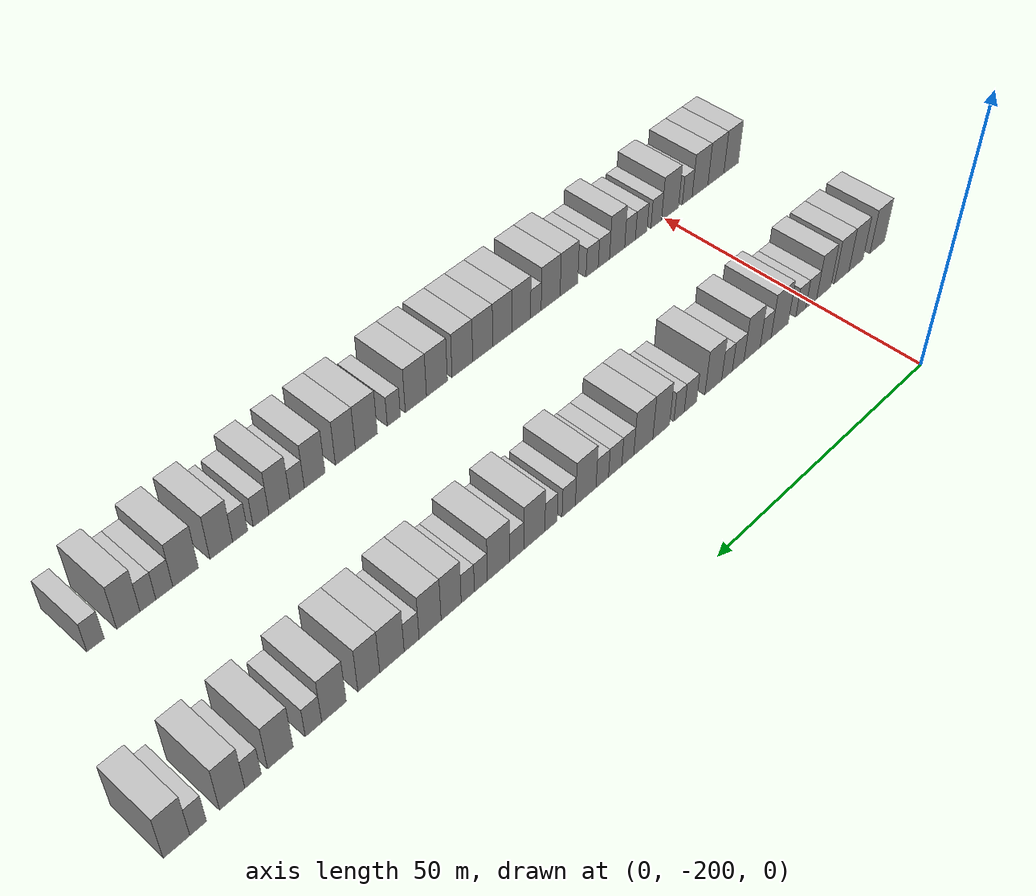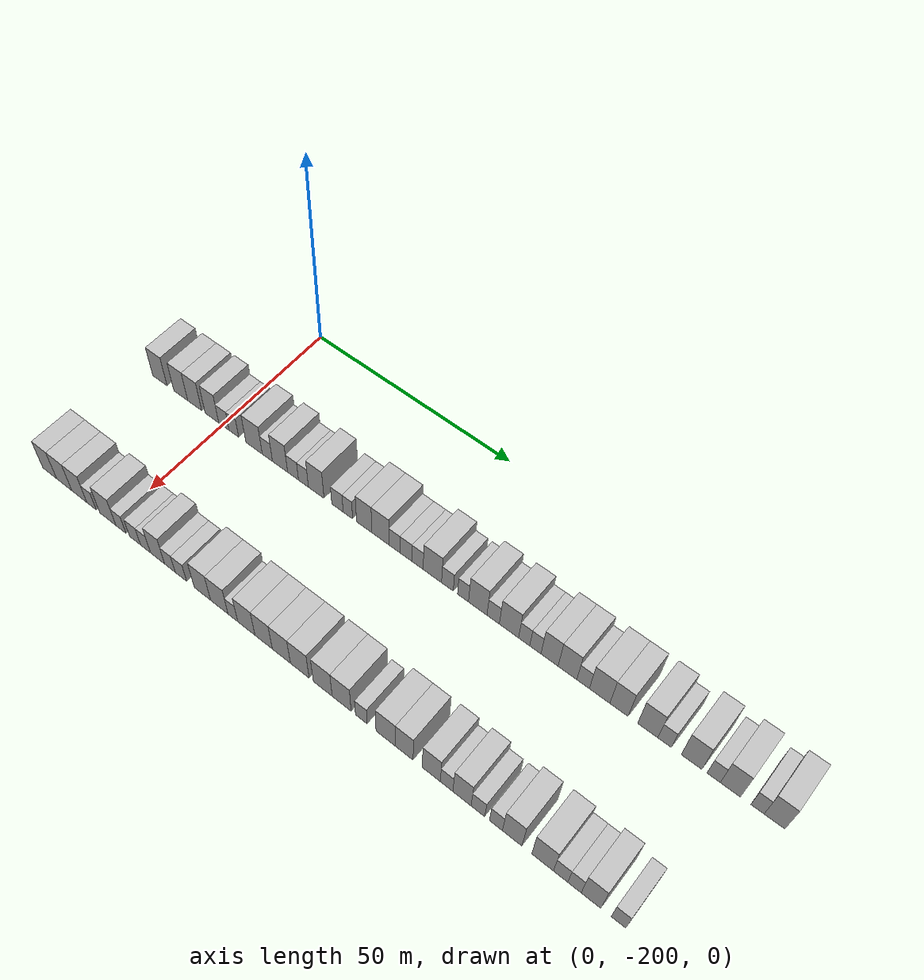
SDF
<sdf version="1.6">
 <world name="default">
  <model name="building_1">
   <static>1</static>
   <pose>25.0000 -217.9095 0 0.000000 0.000000 0.000000</pose>
   <link name="link">
    <pose>0 0 4.50 0 0 0</pose>
    <collision name="collision"><geometry><box><size>10.0000 4.1810 9.0000</size></box></geometry></collision>
    <visual name="visual">
     <cast_shadows>0</cast_shadows>
     <geometry><box><size>10.0000 4.1810 9.0000</size></box></geometry>
     <material>
      <script>
       <uri>model://HANNAS_wall/materials/scripts</uri>
       <uri>model://HANNAS_wall/materials/textures</uri>
       <name>vrc/HANNAS_wall</name>
      </script>
     </material>
    </visual>
   </link>
  </model>
  <model name="building_2">
   <static>1</static>
   <pose>25.0000 -211.8305 0 0.000000 0.000000 0.000000</pose>
   <link name="link">
    <pose>0 0 4.50 0 0 0</pose>
    <collision name="collision"><geometry><box><size>10.0000 3.9770 9.0000</size></box></geometry></collision>
    <visual name="visual">
     <cast_shadows>0</cast_shadows>
     <geometry><box><size>10.0000 3.9770 9.0000</size></box></geometry>
     <material>
      <script>
       <uri>model://HANNAS_wall/materials/scripts</uri>
       <uri>model://HANNAS_wall/materials/textures</uri>
       <name>vrc/HANNAS_wall</name>
      </script>
     </material>
    </visual>
   </link>
  </model>
  <model name="building_3">
   <static>1</static>
   <pose>25.0000 -207.8415 0 0.000000 0.000000 0.000000</pose>
   <link name="link">
    <pose>0 0 4.50 0 0 0</pose>
    <collision name="collision"><geometry><box><size>10.0000 4.0009 9.0000</size></box></geometry></collision>
    <visual name="visual">
     <cast_shadows>0</cast_shadows>
     <geometry><box><size>10.0000 4.0009 9.0000</size></box></geometry>
     <material>
      <script>
       <uri>model://HANNAS_wall/materials/scripts</uri>
       <uri>model://HANNAS_wall/materials/textures</uri>
       <name>vrc/HANNAS_wall</name>
      </script>
     </material>
    </visual>
   </link>
  </model>
  <model name="building_4">
   <static>1</static>
   <pose>25.0000 -202.9239 0 0.000000 0.000000 0.000000</pose>
   <link name="link">
    <pose>0 0 4.50 0 0 0</pose>
    <collision name="collision"><geometry><box><size>10.0000 3.8345 9.0000</size></box></geometry></collision>
    <visual name="visual">
     <cast_shadows>0</cast_shadows>
     <geometry><box><size>10.0000 3.8345 9.0000</size></box></geometry>
     <material>
      <script>
       <uri>model://HANNAS_wall/materials/scripts</uri>
       <uri>model://HANNAS_wall/materials/textures</uri>
       <name>vrc/HANNAS_wall</name>
      </script>
     </material>
    </visual>
   </link>
  </model>
  <model name="building_5">
   <static>1</static>
   <pose>25.0000 -199.5439 0 0.000000 0.000000 0.000000</pose>
   <link name="link">
    <pose>0 0 3.00 0 0 0</pose>
    <collision name="collision"><geometry><box><size>10.0000 2.9255 6.0000</size></box></geometry></collision>
    <visual name="visual">
     <cast_shadows>0</cast_shadows>
     <geometry><box><size>10.0000 2.9255 6.0000</size></box></geometry>
     <material>
      <script>
       <uri>model://HANNAS_wall/materials/scripts</uri>
       <uri>model://HANNAS_wall/materials/textures</uri>
       <name>vrc/HANNAS_wall</name>
      </script>
     </material>
    </visual>
   </link>
  </model>
  <model name="building_6">
   <static>1</static>
   <pose>25.0000 -196.7667 0 0.000000 0.000000 0.000000</pose>
   <link name="link">
    <pose>0 0 3.00 0 0 0</pose>
    <collision name="collision"><geometry><box><size>10.0000 2.6289 6.0000</size></box></geometry></collision>
    <visual name="visual">
     <cast_shadows>0</cast_shadows>
     <geometry><box><size>10.0000 2.6289 6.0000</size></box></geometry>
     <material>
      <script>
       <uri>model://HANNAS_wall/materials/scripts</uri>
       <uri>model://HANNAS_wall/materials/textures</uri>
       <name>vrc/HANNAS_wall</name>
      </script>
     </material>
    </visual>
   </link>
  </model>
  <model name="building_7">
   <static>1</static>
   <pose>25.0000 -191.2194 0 0.000000 0.000000 0.000000</pose>
   <link name="link">
    <pose>0 0 4.50 0 0 0</pose>
    <collision name="collision"><geometry><box><size>10.0000 4.4657 9.0000</size></box></geometry></collision>
    <visual name="visual">
     <cast_shadows>0</cast_shadows>
     <geometry><box><size>10.0000 4.4657 9.0000</size></box></geometry>
     <material>
      <script>
       <uri>model://HANNAS_wall/materials/scripts</uri>
       <uri>model://HANNAS_wall/materials/textures</uri>
       <name>vrc/HANNAS_wall</name>
      </script>
     </material>
    </visual>
   </link>
  </model>
  <model name="building_8">
   <static>1</static>
   <pose>25.0000 -187.6018 0 0.000000 0.000000 0.000000</pose>
   <link name="link">
    <pose>0 0 3.00 0 0 0</pose>
    <collision name="collision"><geometry><box><size>10.0000 2.7696 6.0000</size></box></geometry></collision>
    <visual name="visual">
     <cast_shadows>0</cast_shadows>
     <geometry><box><size>10.0000 2.7696 6.0000</size></box></geometry>
     <material>
      <script>
       <uri>model://HANNAS_wall/materials/scripts</uri>
       <uri>model://HANNAS_wall/materials/textures</uri>
       <name>vrc/HANNAS_wall</name>
      </script>
     </material>
    </visual>
   </link>
  </model>
  <model name="building_9">
   <static>1</static>
   <pose>25.0000 -184.1889 0 0.000000 0.000000 0.000000</pose>
   <link name="link">
    <pose>0 0 4.50 0 0 0</pose>
    <collision name="collision"><geometry><box><size>10.0000 4.0561 9.0000</size></box></geometry></collision>
    <visual name="visual">
     <cast_shadows>0</cast_shadows>
     <geometry><box><size>10.0000 4.0561 9.0000</size></box></geometry>
     <material>
      <script>
       <uri>model://HANNAS_wall/materials/scripts</uri>
       <uri>model://HANNAS_wall/materials/textures</uri>
       <name>vrc/HANNAS_wall</name>
      </script>
     </material>
    </visual>
   </link>
  </model>
  <model name="building_10">
   <static>1</static>
   <pose>25.0000 -180.7169 0 0.000000 0.000000 0.000000</pose>
   <link name="link">
    <pose>0 0 3.00 0 0 0</pose>
    <collision name="collision"><geometry><box><size>10.0000 2.8880 6.0000</size></box></geometry></collision>
    <visual name="visual">
     <cast_shadows>0</cast_shadows>
     <geometry><box><size>10.0000 2.8880 6.0000</size></box></geometry>
     <material>
      <script>
       <uri>model://HANNAS_wall/materials/scripts</uri>
       <uri>model://HANNAS_wall/materials/textures</uri>
       <name>vrc/HANNAS_wall</name>
      </script>
     </material>
    </visual>
   </link>
  </model>
  <model name="building_11">
   <static>1</static>
   <pose>25.0000 -177.9663 0 0.000000 0.000000 0.000000</pose>
   <link name="link">
    <pose>0 0 3.00 0 0 0</pose>
    <collision name="collision"><geometry><box><size>10.0000 2.6132 6.0000</size></box></geometry></collision>
    <visual name="visual">
     <cast_shadows>0</cast_shadows>
     <geometry><box><size>10.0000 2.6132 6.0000</size></box></geometry>
     <material>
      <script>
       <uri>model://HANNAS_wall/materials/scripts</uri>
       <uri>model://HANNAS_wall/materials/textures</uri>
       <name>vrc/HANNAS_wall</name>
      </script>
     </material>
    </visual>
   </link>
  </model>
  <model name="building_12">
   <static>1</static>
   <pose>25.0000 -174.6368 0 0.000000 0.000000 0.000000</pose>
   <link name="link">
    <pose>0 0 4.50 0 0 0</pose>
    <collision name="collision"><geometry><box><size>10.0000 4.0458 9.0000</size></box></geometry></collision>
    <visual name="visual">
     <cast_shadows>0</cast_shadows>
     <geometry><box><size>10.0000 4.0458 9.0000</size></box></geometry>
     <material>
      <script>
       <uri>model://HANNAS_wall/materials/scripts</uri>
       <uri>model://HANNAS_wall/materials/textures</uri>
       <name>vrc/HANNAS_wall</name>
      </script>
     </material>
    </visual>
   </link>
  </model>
  <model name="building_13">
   <static>1</static>
   <pose>25.0000 -169.1580 0 0.000000 0.000000 0.000000</pose>
   <link name="link">
    <pose>0 0 3.00 0 0 0</pose>
    <collision name="collision"><geometry><box><size>10.0000 2.9118 6.0000</size></box></geometry></collision>
    <visual name="visual">
     <cast_shadows>0</cast_shadows>
     <geometry><box><size>10.0000 2.9118 6.0000</size></box></geometry>
     <material>
      <script>
       <uri>model://HANNAS_wall/materials/scripts</uri>
       <uri>model://HANNAS_wall/materials/textures</uri>
       <name>vrc/HANNAS_wall</name>
      </script>
     </material>
    </visual>
   </link>
  </model>
  <model name="building_14">
   <static>1</static>
   <pose>25.0000 -166.4994 0 0.000000 0.000000 0.000000</pose>
   <link name="link">
    <pose>0 0 3.00 0 0 0</pose>
    <collision name="collision"><geometry><box><size>10.0000 2.4055 6.0000</size></box></geometry></collision>
    <visual name="visual">
     <cast_shadows>0</cast_shadows>
     <geometry><box><size>10.0000 2.4055 6.0000</size></box></geometry>
     <material>
      <script>
       <uri>model://HANNAS_wall/materials/scripts</uri>
       <uri>model://HANNAS_wall/materials/textures</uri>
       <name>vrc/HANNAS_wall</name>
      </script>
     </material>
    </visual>
   </link>
  </model>
  <model name="building_15">
   <static>1</static>
   <pose>25.0000 -162.3699 0 0.000000 0.000000 0.000000</pose>
   <link name="link">
    <pose>0 0 4.50 0 0 0</pose>
    <collision name="collision"><geometry><box><size>10.0000 3.8535 9.0000</size></box></geometry></collision>
    <visual name="visual">
     <cast_shadows>0</cast_shadows>
     <geometry><box><size>10.0000 3.8535 9.0000</size></box></geometry>
     <material>
      <script>
       <uri>model://HANNAS_wall/materials/scripts</uri>
       <uri>model://HANNAS_wall/materials/textures</uri>
       <name>vrc/HANNAS_wall</name>
      </script>
     </material>
    </visual>
   </link>
  </model>
  <model name="building_16">
   <static>1</static>
   <pose>25.0000 -158.2993 0 0.000000 0.000000 0.000000</pose>
   <link name="link">
    <pose>0 0 4.50 0 0 0</pose>
    <collision name="collision"><geometry><box><size>10.0000 4.2877 9.0000</size></box></geometry></collision>
    <visual name="visual">
     <cast_shadows>0</cast_shadows>
     <geometry><box><size>10.0000 4.2877 9.0000</size></box></geometry>
     <material>
      <script>
       <uri>model://HANNAS_wall/materials/scripts</uri>
       <uri>model://HANNAS_wall/materials/textures</uri>
       <name>vrc/HANNAS_wall</name>
      </script>
     </material>
    </visual>
   </link>
  </model>
  <model name="building_17">
   <static>1</static>
   <pose>25.0000 -154.8249 0 0.000000 0.000000 0.000000</pose>
   <link name="link">
    <pose>0 0 3.00 0 0 0</pose>
    <collision name="collision"><geometry><box><size>10.0000 2.6612 6.0000</size></box></geometry></collision>
    <visual name="visual">
     <cast_shadows>0</cast_shadows>
     <geometry><box><size>10.0000 2.6612 6.0000</size></box></geometry>
     <material>
      <script>
       <uri>model://HANNAS_wall/materials/scripts</uri>
       <uri>model://HANNAS_wall/materials/textures</uri>
       <name>vrc/HANNAS_wall</name>
      </script>
     </material>
    </visual>
   </link>
  </model>
  <model name="building_18">
   <static>1</static>
   <pose>25.0000 -152.0456 0 0.000000 0.000000 0.000000</pose>
   <link name="link">
    <pose>0 0 3.00 0 0 0</pose>
    <collision name="collision"><geometry><box><size>10.0000 2.8976 6.0000</size></box></geometry></collision>
    <visual name="visual">
     <cast_shadows>0</cast_shadows>
     <geometry><box><size>10.0000 2.8976 6.0000</size></box></geometry>
     <material>
      <script>
       <uri>model://HANNAS_wall/materials/scripts</uri>
       <uri>model://HANNAS_wall/materials/textures</uri>
       <name>vrc/HANNAS_wall</name>
      </script>
     </material>
    </visual>
   </link>
  </model>
  <model name="building_19">
   <static>1</static>
   <pose>25.0000 -149.2381 0 0.000000 0.000000 0.000000</pose>
   <link name="link">
    <pose>0 0 3.00 0 0 0</pose>
    <collision name="collision"><geometry><box><size>10.0000 2.7174 6.0000</size></box></geometry></collision>
    <visual name="visual">
     <cast_shadows>0</cast_shadows>
     <geometry><box><size>10.0000 2.7174 6.0000</size></box></geometry>
     <material>
      <script>
       <uri>model://HANNAS_wall/materials/scripts</uri>
       <uri>model://HANNAS_wall/materials/textures</uri>
       <name>vrc/HANNAS_wall</name>
      </script>
     </material>
    </visual>
   </link>
  </model>
  <model name="building_20">
   <static>1</static>
   <pose>25.0000 -145.6842 0 0.000000 0.000000 0.000000</pose>
   <link name="link">
    <pose>0 0 4.50 0 0 0</pose>
    <collision name="collision"><geometry><box><size>10.0000 4.3903 9.0000</size></box></geometry></collision>
    <visual name="visual">
     <cast_shadows>0</cast_shadows>
     <geometry><box><size>10.0000 4.3903 9.0000</size></box></geometry>
     <material>
      <script>
       <uri>model://HANNAS_wall/materials/scripts</uri>
       <uri>model://HANNAS_wall/materials/textures</uri>
       <name>vrc/HANNAS_wall</name>
      </script>
     </material>
    </visual>
   </link>
  </model>
  <model name="building_21">
   <static>1</static>
   <pose>25.0000 -142.0989 0 0.000000 0.000000 0.000000</pose>
   <link name="link">
    <pose>0 0 3.00 0 0 0</pose>
    <collision name="collision"><geometry><box><size>10.0000 2.7802 6.0000</size></box></geometry></collision>
    <visual name="visual">
     <cast_shadows>0</cast_shadows>
     <geometry><box><size>10.0000 2.7802 6.0000</size></box></geometry>
     <material>
      <script>
       <uri>model://HANNAS_wall/materials/scripts</uri>
       <uri>model://HANNAS_wall/materials/textures</uri>
       <name>vrc/HANNAS_wall</name>
      </script>
     </material>
    </visual>
   </link>
  </model>
  <model name="building_22">
   <static>1</static>
   <pose>25.0000 -138.4294 0 0.000000 0.000000 0.000000</pose>
   <link name="link">
    <pose>0 0 3.00 0 0 0</pose>
    <collision name="collision"><geometry><box><size>10.0000 2.5588 6.0000</size></box></geometry></collision>
    <visual name="visual">
     <cast_shadows>0</cast_shadows>
     <geometry><box><size>10.0000 2.5588 6.0000</size></box></geometry>
     <material>
      <script>
       <uri>model://HANNAS_wall/materials/scripts</uri>
       <uri>model://HANNAS_wall/materials/textures</uri>
       <name>vrc/HANNAS_wall</name>
      </script>
     </material>
    </visual>
   </link>
  </model>
  <model name="building_23">
   <static>1</static>
   <pose>25.0000 -135.0135 0 0.000000 0.000000 0.000000</pose>
   <link name="link">
    <pose>0 0 4.50 0 0 0</pose>
    <collision name="collision"><geometry><box><size>10.0000 4.2731 9.0000</size></box></geometry></collision>
    <visual name="visual">
     <cast_shadows>0</cast_shadows>
     <geometry><box><size>10.0000 4.2731 9.0000</size></box></geometry>
     <material>
      <script>
       <uri>model://HANNAS_wall/materials/scripts</uri>
       <uri>model://HANNAS_wall/materials/textures</uri>
       <name>vrc/HANNAS_wall</name>
      </script>
     </material>
    </visual>
   </link>
  </model>
  <model name="building_24">
   <static>1</static>
   <pose>25.0000 -131.4598 0 0.000000 0.000000 0.000000</pose>
   <link name="link">
    <pose>0 0 3.00 0 0 0</pose>
    <collision name="collision"><geometry><box><size>10.0000 2.8342 6.0000</size></box></geometry></collision>
    <visual name="visual">
     <cast_shadows>0</cast_shadows>
     <geometry><box><size>10.0000 2.8342 6.0000</size></box></geometry>
     <material>
      <script>
       <uri>model://HANNAS_wall/materials/scripts</uri>
       <uri>model://HANNAS_wall/materials/textures</uri>
       <name>vrc/HANNAS_wall</name>
      </script>
     </material>
    </visual>
   </link>
  </model>
  <model name="building_25">
   <static>1</static>
   <pose>25.0000 -127.8671 0 0.000000 0.000000 0.000000</pose>
   <link name="link">
    <pose>0 0 4.50 0 0 0</pose>
    <collision name="collision"><geometry><box><size>10.0000 4.3512 9.0000</size></box></geometry></collision>
    <visual name="visual">
     <cast_shadows>0</cast_shadows>
     <geometry><box><size>10.0000 4.3512 9.0000</size></box></geometry>
     <material>
      <script>
       <uri>model://HANNAS_wall/materials/scripts</uri>
       <uri>model://HANNAS_wall/materials/textures</uri>
       <name>vrc/HANNAS_wall</name>
      </script>
     </material>
    </visual>
   </link>
  </model>
  <model name="building_26">
   <static>1</static>
   <pose>25.0000 -124.4405 0 0.000000 0.000000 0.000000</pose>
   <link name="link">
    <pose>0 0 3.00 0 0 0</pose>
    <collision name="collision"><geometry><box><size>10.0000 2.5020 6.0000</size></box></geometry></collision>
    <visual name="visual">
     <cast_shadows>0</cast_shadows>
     <geometry><box><size>10.0000 2.5020 6.0000</size></box></geometry>
     <material>
      <script>
       <uri>model://HANNAS_wall/materials/scripts</uri>
       <uri>model://HANNAS_wall/materials/textures</uri>
       <name>vrc/HANNAS_wall</name>
      </script>
     </material>
    </visual>
   </link>
  </model>
  <model name="building_27">
   <static>1</static>
   <pose>25.0000 -121.9420 0 0.000000 0.000000 0.000000</pose>
   <link name="link">
    <pose>0 0 3.00 0 0 0</pose>
    <collision name="collision"><geometry><box><size>10.0000 2.4951 6.0000</size></box></geometry></collision>
    <visual name="visual">
     <cast_shadows>0</cast_shadows>
     <geometry><box><size>10.0000 2.4951 6.0000</size></box></geometry>
     <material>
      <script>
       <uri>model://HANNAS_wall/materials/scripts</uri>
       <uri>model://HANNAS_wall/materials/textures</uri>
       <name>vrc/HANNAS_wall</name>
      </script>
     </material>
    </visual>
   </link>
  </model>
  <model name="building_28">
   <static>1</static>
   <pose>25.0000 -118.8082 0 0.000000 0.000000 0.000000</pose>
   <link name="link">
    <pose>0 0 4.50 0 0 0</pose>
    <collision name="collision"><geometry><box><size>10.0000 3.7726 9.0000</size></box></geometry></collision>
    <visual name="visual">
     <cast_shadows>0</cast_shadows>
     <geometry><box><size>10.0000 3.7726 9.0000</size></box></geometry>
     <material>
      <script>
       <uri>model://HANNAS_wall/materials/scripts</uri>
       <uri>model://HANNAS_wall/materials/textures</uri>
       <name>vrc/HANNAS_wall</name>
      </script>
     </material>
    </visual>
   </link>
  </model>
  <model name="building_29">
   <static>1</static>
   <pose>25.0000 -114.8955 0 0.000000 0.000000 0.000000</pose>
   <link name="link">
    <pose>0 0 4.50 0 0 0</pose>
    <collision name="collision"><geometry><box><size>10.0000 4.0526 9.0000</size></box></geometry></collision>
    <visual name="visual">
     <cast_shadows>0</cast_shadows>
     <geometry><box><size>10.0000 4.0526 9.0000</size></box></geometry>
     <material>
      <script>
       <uri>model://HANNAS_wall/materials/scripts</uri>
       <uri>model://HANNAS_wall/materials/textures</uri>
       <name>vrc/HANNAS_wall</name>
      </script>
     </material>
    </visual>
   </link>
  </model>
  <model name="building_30">
   <static>1</static>
   <pose>25.0000 -111.5190 0 0.000000 0.000000 0.000000</pose>
   <link name="link">
    <pose>0 0 3.00 0 0 0</pose>
    <collision name="collision"><geometry><box><size>10.0000 2.7004 6.0000</size></box></geometry></collision>
    <visual name="visual">
     <cast_shadows>0</cast_shadows>
     <geometry><box><size>10.0000 2.7004 6.0000</size></box></geometry>
     <material>
      <script>
       <uri>model://HANNAS_wall/materials/scripts</uri>
       <uri>model://HANNAS_wall/materials/textures</uri>
       <name>vrc/HANNAS_wall</name>
      </script>
     </material>
    </visual>
   </link>
  </model>
  <model name="building_31">
   <static>1</static>
   <pose>25.0000 -107.9925 0 0.000000 0.000000 0.000000</pose>
   <link name="link">
    <pose>0 0 4.50 0 0 0</pose>
    <collision name="collision"><geometry><box><size>10.0000 4.3526 9.0000</size></box></geometry></collision>
    <visual name="visual">
     <cast_shadows>0</cast_shadows>
     <geometry><box><size>10.0000 4.3526 9.0000</size></box></geometry>
     <material>
      <script>
       <uri>model://HANNAS_wall/materials/scripts</uri>
       <uri>model://HANNAS_wall/materials/textures</uri>
       <name>vrc/HANNAS_wall</name>
      </script>
     </material>
    </visual>
   </link>
  </model>
  <model name="building_32">
   <static>1</static>
   <pose>25.0000 -103.9009 0 0.000000 0.000000 0.000000</pose>
   <link name="link">
    <pose>0 0 4.50 0 0 0</pose>
    <collision name="collision"><geometry><box><size>10.0000 3.8305 9.0000</size></box></geometry></collision>
    <visual name="visual">
     <cast_shadows>0</cast_shadows>
     <geometry><box><size>10.0000 3.8305 9.0000</size></box></geometry>
     <material>
      <script>
       <uri>model://HANNAS_wall/materials/scripts</uri>
       <uri>model://HANNAS_wall/materials/textures</uri>
       <name>vrc/HANNAS_wall</name>
      </script>
     </material>
    </visual>
   </link>
  </model>
  <model name="building_33">
   <static>1</static>
   <pose>25.0000 -97.9165 0 0.000000 0.000000 0.000000</pose>
   <link name="link">
    <pose>0 0 4.50 0 0 0</pose>
    <collision name="collision"><geometry><box><size>10.0000 4.1384 9.0000</size></box></geometry></collision>
    <visual name="visual">
     <cast_shadows>0</cast_shadows>
     <geometry><box><size>10.0000 4.1384 9.0000</size></box></geometry>
     <material>
      <script>
       <uri>model://HANNAS_wall/materials/scripts</uri>
       <uri>model://HANNAS_wall/materials/textures</uri>
       <name>vrc/HANNAS_wall</name>
      </script>
     </material>
    </visual>
   </link>
  </model>
  <model name="building_34">
   <static>1</static>
   <pose>25.0000 -94.4695 0 0.000000 0.000000 0.000000</pose>
   <link name="link">
    <pose>0 0 3.00 0 0 0</pose>
    <collision name="collision"><geometry><box><size>10.0000 2.7556 6.0000</size></box></geometry></collision>
    <visual name="visual">
     <cast_shadows>0</cast_shadows>
     <geometry><box><size>10.0000 2.7556 6.0000</size></box></geometry>
     <material>
      <script>
       <uri>model://HANNAS_wall/materials/scripts</uri>
       <uri>model://HANNAS_wall/materials/textures</uri>
       <name>vrc/HANNAS_wall</name>
      </script>
     </material>
    </visual>
   </link>
  </model>
  <model name="building_35">
   <static>1</static>
   <pose>25.0000 -89.0252 0 0.000000 0.000000 0.000000</pose>
   <link name="link">
    <pose>0 0 4.50 0 0 0</pose>
    <collision name="collision"><geometry><box><size>10.0000 4.1331 9.0000</size></box></geometry></collision>
    <visual name="visual">
     <cast_shadows>0</cast_shadows>
     <geometry><box><size>10.0000 4.1331 9.0000</size></box></geometry>
     <material>
      <script>
       <uri>model://HANNAS_wall/materials/scripts</uri>
       <uri>model://HANNAS_wall/materials/textures</uri>
       <name>vrc/HANNAS_wall</name>
      </script>
     </material>
    </visual>
   </link>
  </model>
  <model name="building_36">
   <static>1</static>
   <pose>25.0000 -84.6537 0 0.000000 0.000000 0.000000</pose>
   <link name="link">
    <pose>0 0 3.00 0 0 0</pose>
    <collision name="collision"><geometry><box><size>10.0000 2.6100 6.0000</size></box></geometry></collision>
    <visual name="visual">
     <cast_shadows>0</cast_shadows>
     <geometry><box><size>10.0000 2.6100 6.0000</size></box></geometry>
     <material>
      <script>
       <uri>model://HANNAS_wall/materials/scripts</uri>
       <uri>model://HANNAS_wall/materials/textures</uri>
       <name>vrc/HANNAS_wall</name>
      </script>
     </material>
    </visual>
   </link>
  </model>
  <model name="building_37">
   <static>1</static>
   <pose>25.0000 -81.3792 0 0.000000 0.000000 0.000000</pose>
   <link name="link">
    <pose>0 0 4.50 0 0 0</pose>
    <collision name="collision"><geometry><box><size>10.0000 3.9389 9.0000</size></box></geometry></collision>
    <visual name="visual">
     <cast_shadows>0</cast_shadows>
     <geometry><box><size>10.0000 3.9389 9.0000</size></box></geometry>
     <material>
      <script>
       <uri>model://HANNAS_wall/materials/scripts</uri>
       <uri>model://HANNAS_wall/materials/textures</uri>
       <name>vrc/HANNAS_wall</name>
      </script>
     </material>
    </visual>
   </link>
  </model>
  <model name="building_38">
   <static>1</static>
   <pose>25.0000 -76.1478 0 0.000000 0.000000 0.000000</pose>
   <link name="link">
    <pose>0 0 3.00 0 0 0</pose>
    <collision name="collision"><geometry><box><size>10.0000 2.5238 6.0000</size></box></geometry></collision>
    <visual name="visual">
     <cast_shadows>0</cast_shadows>
     <geometry><box><size>10.0000 2.5238 6.0000</size></box></geometry>
     <material>
      <script>
       <uri>model://HANNAS_wall/materials/scripts</uri>
       <uri>model://HANNAS_wall/materials/textures</uri>
       <name>vrc/HANNAS_wall</name>
      </script>
     </material>
    </visual>
   </link>
  </model>
  <model name="building_39">
   <static>1</static>
   <pose>25.0000 -72.9089 0 0.000000 0.000000 0.000000</pose>
   <link name="link">
    <pose>0 0 4.50 0 0 0</pose>
    <collision name="collision"><geometry><box><size>10.0000 3.9540 9.0000</size></box></geometry></collision>
    <visual name="visual">
     <cast_shadows>0</cast_shadows>
     <geometry><box><size>10.0000 3.9540 9.0000</size></box></geometry>
     <material>
      <script>
       <uri>model://HANNAS_wall/materials/scripts</uri>
       <uri>model://HANNAS_wall/materials/textures</uri>
       <name>vrc/HANNAS_wall</name>
      </script>
     </material>
    </visual>
   </link>
  </model>
  <model name="building_111">
   <static>1</static>
   <pose>55.0000 -217.9803 0 0.000000 0.000000 0.000000</pose>
   <link name="link">
    <pose>0 0 4.50 0 0 0</pose>
    <collision name="collision"><geometry><box><size>10.0000 4.0393 9.0000</size></box></geometry></collision>
    <visual name="visual">
     <cast_shadows>0</cast_shadows>
     <geometry><box><size>10.0000 4.0393 9.0000</size></box></geometry>
     <material>
      <script>
       <uri>model://HANNAS_wall/materials/scripts</uri>
       <uri>model://HANNAS_wall/materials/textures</uri>
       <name>vrc/HANNAS_wall</name>
      </script>
     </material>
    </visual>
   </link>
  </model>
  <model name="building_112">
   <static>1</static>
   <pose>55.0000 -213.7556 0 0.000000 0.000000 0.000000</pose>
   <link name="link">
    <pose>0 0 4.50 0 0 0</pose>
    <collision name="collision"><geometry><box><size>10.0000 4.4101 9.0000</size></box></geometry></collision>
    <visual name="visual">
     <cast_shadows>0</cast_shadows>
     <geometry><box><size>10.0000 4.4101 9.0000</size></box></geometry>
     <material>
      <script>
       <uri>model://HANNAS_wall/materials/scripts</uri>
       <uri>model://HANNAS_wall/materials/textures</uri>
       <name>vrc/HANNAS_wall</name>
      </script>
     </material>
    </visual>
   </link>
  </model>
  <model name="building_113">
   <static>1</static>
   <pose>55.0000 -209.4050 0 0.000000 0.000000 0.000000</pose>
   <link name="link">
    <pose>0 0 4.50 0 0 0</pose>
    <collision name="collision"><geometry><box><size>10.0000 4.2912 9.0000</size></box></geometry></collision>
    <visual name="visual">
     <cast_shadows>0</cast_shadows>
     <geometry><box><size>10.0000 4.2912 9.0000</size></box></geometry>
     <material>
      <script>
       <uri>model://HANNAS_wall/materials/scripts</uri>
       <uri>model://HANNAS_wall/materials/textures</uri>
       <name>vrc/HANNAS_wall</name>
      </script>
     </material>
    </visual>
   </link>
  </model>
  <model name="building_114">
   <static>1</static>
   <pose>55.0000 -205.9422 0 0.000000 0.000000 0.000000</pose>
   <link name="link">
    <pose>0 0 3.00 0 0 0</pose>
    <collision name="collision"><geometry><box><size>10.0000 2.6344 6.0000</size></box></geometry></collision>
    <visual name="visual">
     <cast_shadows>0</cast_shadows>
     <geometry><box><size>10.0000 2.6344 6.0000</size></box></geometry>
     <material>
      <script>
       <uri>model://HANNAS_wall/materials/scripts</uri>
       <uri>model://HANNAS_wall/materials/textures</uri>
       <name>vrc/HANNAS_wall</name>
      </script>
     </material>
    </visual>
   </link>
  </model>
  <model name="building_115">
   <static>1</static>
   <pose>55.0000 -201.3809 0 0.000000 0.000000 0.000000</pose>
   <link name="link">
    <pose>0 0 4.50 0 0 0</pose>
    <collision name="collision"><geometry><box><size>10.0000 4.4881 9.0000</size></box></geometry></collision>
    <visual name="visual">
     <cast_shadows>0</cast_shadows>
     <geometry><box><size>10.0000 4.4881 9.0000</size></box></geometry>
     <material>
      <script>
       <uri>model://HANNAS_wall/materials/scripts</uri>
       <uri>model://HANNAS_wall/materials/textures</uri>
       <name>vrc/HANNAS_wall</name>
      </script>
     </material>
    </visual>
   </link>
  </model>
  <model name="building_116">
   <static>1</static>
   <pose>55.0000 -197.7536 0 0.000000 0.000000 0.000000</pose>
   <link name="link">
    <pose>0 0 3.00 0 0 0</pose>
    <collision name="collision"><geometry><box><size>10.0000 2.7665 6.0000</size></box></geometry></collision>
    <visual name="visual">
     <cast_shadows>0</cast_shadows>
     <geometry><box><size>10.0000 2.7665 6.0000</size></box></geometry>
     <material>
      <script>
       <uri>model://HANNAS_wall/materials/scripts</uri>
       <uri>model://HANNAS_wall/materials/textures</uri>
       <name>vrc/HANNAS_wall</name>
      </script>
     </material>
    </visual>
   </link>
  </model>
  <model name="building_117">
   <static>1</static>
   <pose>55.0000 -193.8765 0 0.000000 0.000000 0.000000</pose>
   <link name="link">
    <pose>0 0 3.00 0 0 0</pose>
    <collision name="collision"><geometry><box><size>10.0000 2.9877 6.0000</size></box></geometry></collision>
    <visual name="visual">
     <cast_shadows>0</cast_shadows>
     <geometry><box><size>10.0000 2.9877 6.0000</size></box></geometry>
     <material>
      <script>
       <uri>model://HANNAS_wall/materials/scripts</uri>
       <uri>model://HANNAS_wall/materials/textures</uri>
       <name>vrc/HANNAS_wall</name>
      </script>
     </material>
    </visual>
   </link>
  </model>
  <model name="building_118">
   <static>1</static>
   <pose>55.0000 -191.0268 0 0.000000 0.000000 0.000000</pose>
   <link name="link">
    <pose>0 0 3.00 0 0 0</pose>
    <collision name="collision"><geometry><box><size>10.0000 2.7118 6.0000</size></box></geometry></collision>
    <visual name="visual">
     <cast_shadows>0</cast_shadows>
     <geometry><box><size>10.0000 2.7118 6.0000</size></box></geometry>
     <material>
      <script>
       <uri>model://HANNAS_wall/materials/scripts</uri>
       <uri>model://HANNAS_wall/materials/textures</uri>
       <name>vrc/HANNAS_wall</name>
      </script>
     </material>
    </visual>
   </link>
  </model>
  <model name="building_119">
   <static>1</static>
   <pose>55.0000 -187.7705 0 0.000000 0.000000 0.000000</pose>
   <link name="link">
    <pose>0 0 4.50 0 0 0</pose>
    <collision name="collision"><geometry><box><size>10.0000 3.8008 9.0000</size></box></geometry></collision>
    <visual name="visual">
     <cast_shadows>0</cast_shadows>
     <geometry><box><size>10.0000 3.8008 9.0000</size></box></geometry>
     <material>
      <script>
       <uri>model://HANNAS_wall/materials/scripts</uri>
       <uri>model://HANNAS_wall/materials/textures</uri>
       <name>vrc/HANNAS_wall</name>
      </script>
     </material>
    </visual>
   </link>
  </model>
  <model name="building_120">
   <static>1</static>
   <pose>55.0000 -184.4775 0 0.000000 0.000000 0.000000</pose>
   <link name="link">
    <pose>0 0 3.00 0 0 0</pose>
    <collision name="collision"><geometry><box><size>10.0000 2.7850 6.0000</size></box></geometry></collision>
    <visual name="visual">
     <cast_shadows>0</cast_shadows>
     <geometry><box><size>10.0000 2.7850 6.0000</size></box></geometry>
     <material>
      <script>
       <uri>model://HANNAS_wall/materials/scripts</uri>
       <uri>model://HANNAS_wall/materials/textures</uri>
       <name>vrc/HANNAS_wall</name>
      </script>
     </material>
    </visual>
   </link>
  </model>
  <model name="building_121">
   <static>1</static>
   <pose>55.0000 -181.5906 0 0.000000 0.000000 0.000000</pose>
   <link name="link">
    <pose>0 0 3.00 0 0 0</pose>
    <collision name="collision"><geometry><box><size>10.0000 2.9889 6.0000</size></box></geometry></collision>
    <visual name="visual">
     <cast_shadows>0</cast_shadows>
     <geometry><box><size>10.0000 2.9889 6.0000</size></box></geometry>
     <material>
      <script>
       <uri>model://HANNAS_wall/materials/scripts</uri>
       <uri>model://HANNAS_wall/materials/textures</uri>
       <name>vrc/HANNAS_wall</name>
      </script>
     </material>
    </visual>
   </link>
  </model>
  <model name="building_122">
   <static>1</static>
   <pose>55.0000 -175.9861 0 0.000000 0.000000 0.000000</pose>
   <link name="link">
    <pose>0 0 4.50 0 0 0</pose>
    <collision name="collision"><geometry><box><size>10.0000 4.2200 9.0000</size></box></geometry></collision>
    <visual name="visual">
     <cast_shadows>0</cast_shadows>
     <geometry><box><size>10.0000 4.2200 9.0000</size></box></geometry>
     <material>
      <script>
       <uri>model://HANNAS_wall/materials/scripts</uri>
       <uri>model://HANNAS_wall/materials/textures</uri>
       <name>vrc/HANNAS_wall</name>
      </script>
     </material>
    </visual>
   </link>
  </model>
  <model name="building_123">
   <static>1</static>
   <pose>55.0000 -171.6526 0 0.000000 0.000000 0.000000</pose>
   <link name="link">
    <pose>0 0 4.50 0 0 0</pose>
    <collision name="collision"><geometry><box><size>10.0000 4.4470 9.0000</size></box></geometry></collision>
    <visual name="visual">
     <cast_shadows>0</cast_shadows>
     <geometry><box><size>10.0000 4.4470 9.0000</size></box></geometry>
     <material>
      <script>
       <uri>model://HANNAS_wall/materials/scripts</uri>
       <uri>model://HANNAS_wall/materials/textures</uri>
       <name>vrc/HANNAS_wall</name>
      </script>
     </material>
    </visual>
   </link>
  </model>
  <model name="building_124">
   <static>1</static>
   <pose>55.0000 -168.2030 0 0.000000 0.000000 0.000000</pose>
   <link name="link">
    <pose>0 0 3.00 0 0 0</pose>
    <collision name="collision"><geometry><box><size>10.0000 2.4524 6.0000</size></box></geometry></collision>
    <visual name="visual">
     <cast_shadows>0</cast_shadows>
     <geometry><box><size>10.0000 2.4524 6.0000</size></box></geometry>
     <material>
      <script>
       <uri>model://HANNAS_wall/materials/scripts</uri>
       <uri>model://HANNAS_wall/materials/textures</uri>
       <name>vrc/HANNAS_wall</name>
      </script>
     </material>
    </visual>
   </link>
  </model>
  <model name="building_125">
   <static>1</static>
   <pose>55.0000 -164.8306 0 0.000000 0.000000 0.000000</pose>
   <link name="link">
    <pose>0 0 4.50 0 0 0</pose>
    <collision name="collision"><geometry><box><size>10.0000 4.2925 9.0000</size></box></geometry></collision>
    <visual name="visual">
     <cast_shadows>0</cast_shadows>
     <geometry><box><size>10.0000 4.2925 9.0000</size></box></geometry>
     <material>
      <script>
       <uri>model://HANNAS_wall/materials/scripts</uri>
       <uri>model://HANNAS_wall/materials/textures</uri>
       <name>vrc/HANNAS_wall</name>
      </script>
     </material>
    </visual>
   </link>
  </model>
  <model name="building_126">
   <static>1</static>
   <pose>55.0000 -160.5516 0 0.000000 0.000000 0.000000</pose>
   <link name="link">
    <pose>0 0 4.50 0 0 0</pose>
    <collision name="collision"><geometry><box><size>10.0000 4.2655 9.0000</size></box></geometry></collision>
    <visual name="visual">
     <cast_shadows>0</cast_shadows>
     <geometry><box><size>10.0000 4.2655 9.0000</size></box></geometry>
     <material>
      <script>
       <uri>model://HANNAS_wall/materials/scripts</uri>
       <uri>model://HANNAS_wall/materials/textures</uri>
       <name>vrc/HANNAS_wall</name>
      </script>
     </material>
    </visual>
   </link>
  </model>
  <model name="building_127">
   <static>1</static>
   <pose>55.0000 -156.2185 0 0.000000 0.000000 0.000000</pose>
   <link name="link">
    <pose>0 0 4.50 0 0 0</pose>
    <collision name="collision"><geometry><box><size>10.0000 4.4007 9.0000</size></box></geometry></collision>
    <visual name="visual">
     <cast_shadows>0</cast_shadows>
     <geometry><box><size>10.0000 4.4007 9.0000</size></box></geometry>
     <material>
      <script>
       <uri>model://HANNAS_wall/materials/scripts</uri>
       <uri>model://HANNAS_wall/materials/textures</uri>
       <name>vrc/HANNAS_wall</name>
      </script>
     </material>
    </visual>
   </link>
  </model>
  <model name="building_128">
   <static>1</static>
   <pose>55.0000 -151.7836 0 0.000000 0.000000 0.000000</pose>
   <link name="link">
    <pose>0 0 4.50 0 0 0</pose>
    <collision name="collision"><geometry><box><size>10.0000 4.4691 9.0000</size></box></geometry></collision>
    <visual name="visual">
     <cast_shadows>0</cast_shadows>
     <geometry><box><size>10.0000 4.4691 9.0000</size></box></geometry>
     <material>
      <script>
       <uri>model://HANNAS_wall/materials/scripts</uri>
       <uri>model://HANNAS_wall/materials/textures</uri>
       <name>vrc/HANNAS_wall</name>
      </script>
     </material>
    </visual>
   </link>
  </model>
  <model name="building_129">
   <static>1</static>
   <pose>55.0000 -146.3395 0 0.000000 0.000000 0.000000</pose>
   <link name="link">
    <pose>0 0 4.50 0 0 0</pose>
    <collision name="collision"><geometry><box><size>10.0000 4.4190 9.0000</size></box></geometry></collision>
    <visual name="visual">
     <cast_shadows>0</cast_shadows>
     <geometry><box><size>10.0000 4.4190 9.0000</size></box></geometry>
     <material>
      <script>
       <uri>model://HANNAS_wall/materials/scripts</uri>
       <uri>model://HANNAS_wall/materials/textures</uri>
       <name>vrc/HANNAS_wall</name>
      </script>
     </material>
    </visual>
   </link>
  </model>
  <model name="building_130">
   <static>1</static>
   <pose>55.0000 -141.9300 0 0.000000 0.000000 0.000000</pose>
   <link name="link">
    <pose>0 0 4.50 0 0 0</pose>
    <collision name="collision"><geometry><box><size>10.0000 4.4000 9.0000</size></box></geometry></collision>
    <visual name="visual">
     <cast_shadows>0</cast_shadows>
     <geometry><box><size>10.0000 4.4000 9.0000</size></box></geometry>
     <material>
      <script>
       <uri>model://HANNAS_wall/materials/scripts</uri>
       <uri>model://HANNAS_wall/materials/textures</uri>
       <name>vrc/HANNAS_wall</name>
      </script>
     </material>
    </visual>
   </link>
  </model>
  <model name="building_131">
   <static>1</static>
   <pose>55.0000 -137.3926 0 0.000000 0.000000 0.000000</pose>
   <link name="link">
    <pose>0 0 3.00 0 0 0</pose>
    <collision name="collision"><geometry><box><size>10.0000 2.6748 6.0000</size></box></geometry></collision>
    <visual name="visual">
     <cast_shadows>0</cast_shadows>
     <geometry><box><size>10.0000 2.6748 6.0000</size></box></geometry>
     <material>
      <script>
       <uri>model://HANNAS_wall/materials/scripts</uri>
       <uri>model://HANNAS_wall/materials/textures</uri>
       <name>vrc/HANNAS_wall</name>
      </script>
     </material>
    </visual>
   </link>
  </model>
  <model name="building_132">
   <static>1</static>
   <pose>55.0000 -131.8683 0 0.000000 0.000000 0.000000</pose>
   <link name="link">
    <pose>0 0 4.50 0 0 0</pose>
    <collision name="collision"><geometry><box><size>10.0000 4.3737 9.0000</size></box></geometry></collision>
    <visual name="visual">
     <cast_shadows>0</cast_shadows>
     <geometry><box><size>10.0000 4.3737 9.0000</size></box></geometry>
     <material>
      <script>
       <uri>model://HANNAS_wall/materials/scripts</uri>
       <uri>model://HANNAS_wall/materials/textures</uri>
       <name>vrc/HANNAS_wall</name>
      </script>
     </material>
    </visual>
   </link>
  </model>
  <model name="building_133">
   <static>1</static>
   <pose>55.0000 -127.7347 0 0.000000 0.000000 0.000000</pose>
   <link name="link">
    <pose>0 0 4.50 0 0 0</pose>
    <collision name="collision"><geometry><box><size>10.0000 3.8935 9.0000</size></box></geometry></collision>
    <visual name="visual">
     <cast_shadows>0</cast_shadows>
     <geometry><box><size>10.0000 3.8935 9.0000</size></box></geometry>
     <material>
      <script>
       <uri>model://HANNAS_wall/materials/scripts</uri>
       <uri>model://HANNAS_wall/materials/textures</uri>
       <name>vrc/HANNAS_wall</name>
      </script>
     </material>
    </visual>
   </link>
  </model>
  <model name="building_134">
   <static>1</static>
   <pose>55.0000 -121.8233 0 0.000000 0.000000 0.000000</pose>
   <link name="link">
    <pose>0 0 4.50 0 0 0</pose>
    <collision name="collision"><geometry><box><size>10.0000 3.9294 9.0000</size></box></geometry></collision>
    <visual name="visual">
     <cast_shadows>0</cast_shadows>
     <geometry><box><size>10.0000 3.9294 9.0000</size></box></geometry>
     <material>
      <script>
       <uri>model://HANNAS_wall/materials/scripts</uri>
       <uri>model://HANNAS_wall/materials/textures</uri>
       <name>vrc/HANNAS_wall</name>
      </script>
     </material>
    </visual>
   </link>
  </model>
  <model name="building_135">
   <static>1</static>
   <pose>55.0000 -118.5016 0 0.000000 0.000000 0.000000</pose>
   <link name="link">
    <pose>0 0 3.00 0 0 0</pose>
    <collision name="collision"><geometry><box><size>10.0000 2.7141 6.0000</size></box></geometry></collision>
    <visual name="visual">
     <cast_shadows>0</cast_shadows>
     <geometry><box><size>10.0000 2.7141 6.0000</size></box></geometry>
     <material>
      <script>
       <uri>model://HANNAS_wall/materials/scripts</uri>
       <uri>model://HANNAS_wall/materials/textures</uri>
       <name>vrc/HANNAS_wall</name>
      </script>
     </material>
    </visual>
   </link>
  </model>
  <model name="building_136">
   <static>1</static>
   <pose>55.0000 -115.2139 0 0.000000 0.000000 0.000000</pose>
   <link name="link">
    <pose>0 0 4.50 0 0 0</pose>
    <collision name="collision"><geometry><box><size>10.0000 3.8613 9.0000</size></box></geometry></collision>
    <visual name="visual">
     <cast_shadows>0</cast_shadows>
     <geometry><box><size>10.0000 3.8613 9.0000</size></box></geometry>
     <material>
      <script>
       <uri>model://HANNAS_wall/materials/scripts</uri>
       <uri>model://HANNAS_wall/materials/textures</uri>
       <name>vrc/HANNAS_wall</name>
      </script>
     </material>
    </visual>
   </link>
  </model>
  <model name="building_137">
   <static>1</static>
   <pose>55.0000 -111.8500 0 0.000000 0.000000 0.000000</pose>
   <link name="link">
    <pose>0 0 3.00 0 0 0</pose>
    <collision name="collision"><geometry><box><size>10.0000 2.8664 6.0000</size></box></geometry></collision>
    <visual name="visual">
     <cast_shadows>0</cast_shadows>
     <geometry><box><size>10.0000 2.8664 6.0000</size></box></geometry>
     <material>
      <script>
       <uri>model://HANNAS_wall/materials/scripts</uri>
       <uri>model://HANNAS_wall/materials/textures</uri>
       <name>vrc/HANNAS_wall</name>
      </script>
     </material>
    </visual>
   </link>
  </model>
  <model name="building_138">
   <static>1</static>
   <pose>55.0000 -108.0744 0 0.000000 0.000000 0.000000</pose>
   <link name="link">
    <pose>0 0 3.00 0 0 0</pose>
    <collision name="collision"><geometry><box><size>10.0000 2.6849 6.0000</size></box></geometry></collision>
    <visual name="visual">
     <cast_shadows>0</cast_shadows>
     <geometry><box><size>10.0000 2.6849 6.0000</size></box></geometry>
     <material>
      <script>
       <uri>model://HANNAS_wall/materials/scripts</uri>
       <uri>model://HANNAS_wall/materials/textures</uri>
       <name>vrc/HANNAS_wall</name>
      </script>
     </material>
    </visual>
   </link>
  </model>
  <model name="building_139">
   <static>1</static>
   <pose>55.0000 -104.7330 0 0.000000 0.000000 0.000000</pose>
   <link name="link">
    <pose>0 0 4.50 0 0 0</pose>
    <collision name="collision"><geometry><box><size>10.0000 3.9979 9.0000</size></box></geometry></collision>
    <visual name="visual">
     <cast_shadows>0</cast_shadows>
     <geometry><box><size>10.0000 3.9979 9.0000</size></box></geometry>
     <material>
      <script>
       <uri>model://HANNAS_wall/materials/scripts</uri>
       <uri>model://HANNAS_wall/materials/textures</uri>
       <name>vrc/HANNAS_wall</name>
      </script>
     </material>
    </visual>
   </link>
  </model>
  <model name="building_140">
   <static>1</static>
   <pose>55.0000 -98.5586 0 0.000000 0.000000 0.000000</pose>
   <link name="link">
    <pose>0 0 4.50 0 0 0</pose>
    <collision name="collision"><geometry><box><size>10.0000 4.3509 9.0000</size></box></geometry></collision>
    <visual name="visual">
     <cast_shadows>0</cast_shadows>
     <geometry><box><size>10.0000 4.3509 9.0000</size></box></geometry>
     <material>
      <script>
       <uri>model://HANNAS_wall/materials/scripts</uri>
       <uri>model://HANNAS_wall/materials/textures</uri>
       <name>vrc/HANNAS_wall</name>
      </script>
     </material>
    </visual>
   </link>
  </model>
  <model name="building_141">
   <static>1</static>
   <pose>55.0000 -94.9562 0 0.000000 0.000000 0.000000</pose>
   <link name="link">
    <pose>0 0 3.00 0 0 0</pose>
    <collision name="collision"><geometry><box><size>10.0000 2.8540 6.0000</size></box></geometry></collision>
    <visual name="visual">
     <cast_shadows>0</cast_shadows>
     <geometry><box><size>10.0000 2.8540 6.0000</size></box></geometry>
     <material>
      <script>
       <uri>model://HANNAS_wall/materials/scripts</uri>
       <uri>model://HANNAS_wall/materials/textures</uri>
       <name>vrc/HANNAS_wall</name>
      </script>
     </material>
    </visual>
   </link>
  </model>
  <model name="building_142">
   <static>1</static>
   <pose>55.0000 -92.2107 0 0.000000 0.000000 0.000000</pose>
   <link name="link">
    <pose>0 0 3.00 0 0 0</pose>
    <collision name="collision"><geometry><box><size>10.0000 2.6370 6.0000</size></box></geometry></collision>
    <visual name="visual">
     <cast_shadows>0</cast_shadows>
     <geometry><box><size>10.0000 2.6370 6.0000</size></box></geometry>
     <material>
      <script>
       <uri>model://HANNAS_wall/materials/scripts</uri>
       <uri>model://HANNAS_wall/materials/textures</uri>
       <name>vrc/HANNAS_wall</name>
      </script>
     </material>
    </visual>
   </link>
  </model>
  <model name="building_143">
   <static>1</static>
   <pose>55.0000 -88.9876 0 0.000000 0.000000 0.000000</pose>
   <link name="link">
    <pose>0 0 4.50 0 0 0</pose>
    <collision name="collision"><geometry><box><size>10.0000 3.8091 9.0000</size></box></geometry></collision>
    <visual name="visual">
     <cast_shadows>0</cast_shadows>
     <geometry><box><size>10.0000 3.8091 9.0000</size></box></geometry>
     <material>
      <script>
       <uri>model://HANNAS_wall/materials/scripts</uri>
       <uri>model://HANNAS_wall/materials/textures</uri>
       <name>vrc/HANNAS_wall</name>
      </script>
     </material>
    </visual>
   </link>
  </model>
  <model name="building_144">
   <static>1</static>
   <pose>55.0000 -83.6878 0 0.000000 0.000000 0.000000</pose>
   <link name="link">
    <pose>0 0 3.00 0 0 0</pose>
    <collision name="collision"><geometry><box><size>10.0000 2.7905 6.0000</size></box></geometry></collision>
    <visual name="visual">
     <cast_shadows>0</cast_shadows>
     <geometry><box><size>10.0000 2.7905 6.0000</size></box></geometry>
     <material>
      <script>
       <uri>model://HANNAS_wall/materials/scripts</uri>
       <uri>model://HANNAS_wall/materials/textures</uri>
       <name>vrc/HANNAS_wall</name>
      </script>
     </material>
    </visual>
   </link>
  </model>
 </world>
</sdf>
